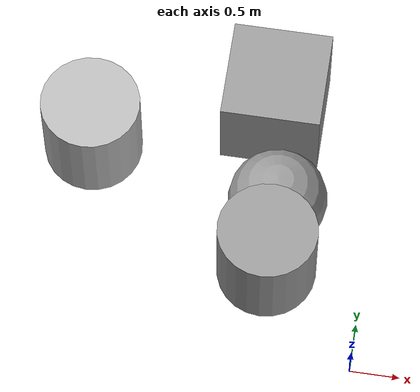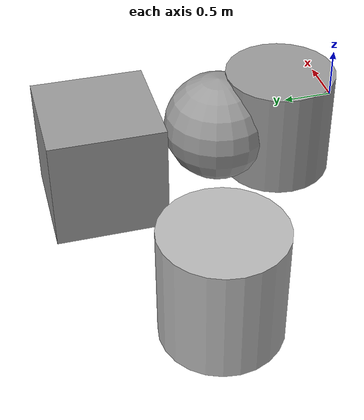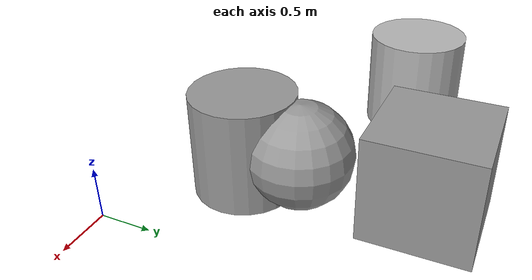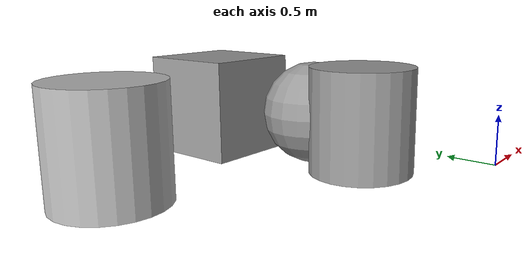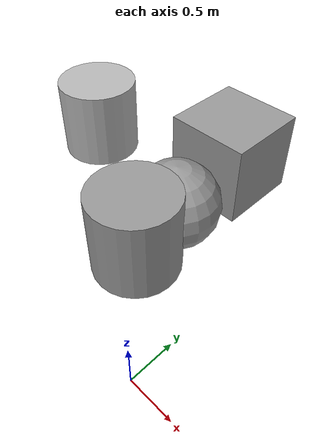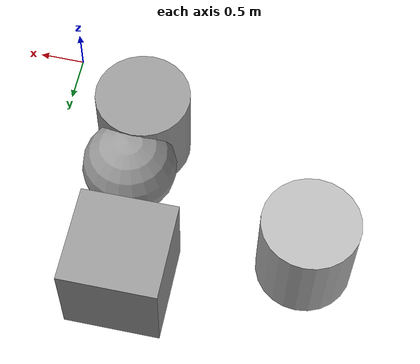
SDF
<?xml version="1.0" ?>
<sdf version="1.6">
  <world name="default">
    <light name="sun" type="directional">
      <cast_shadows>1</cast_shadows>
      <pose>0 0 10 0 0 0</pose>
      <diffuse>0.8 0.8 0.8 1</diffuse>
      <specular>0.2 0.2 0.2 1</specular>
      <attenuation>
        <range>1000</range>
        <constant>0.9</constant>
        <linear>0.01</linear>
        <quadratic>0.001</quadratic>
      </attenuation>
      <direction>-0.5 0.1 -0.9</direction>
      <cast_shadows>1</cast_shadows>
    </light>
    <model name="box_0">
      <pose>-1.121 2.662 0.5 0 0 0</pose>
      <link name="box_0_link">
        <pose>0 0 0 0 0 0</pose>
          <visual name="visual">
            <pose>0 0 0 0 0 0</pose>
            <geometry>
              <box><size>1 1 1</size></box>
            </geometry>
            <material>
              <script>
                <uri>file://media/materials/scripts/gazebo.material</uri>
                <name>Gazebo/Grey</name>
              </script>
              <ambient>0.1 0.1 0.1 1</ambient>
              <diffuse>0.7 0.7 0.7 1</diffuse>
              <specular>0.01 0.01 0.01 1</specular>
              <emissive>0 0 0 1</emissive>
              <opacity>1</opacity>
            </material>
          </visual>
          <collision name="collision">
            <pose>0 0 0 0 0 0</pose>
            <geometry>
              <box><size>1 1 1</size></box>
            </geometry>
          </collision>
      </link>
    </model>
    <model name="sphere_0">
      <pose>-0.944 1.528 0.5 0 0 0</pose>
      <link name="sphere_0_link">
        <pose>0 0 0 0 0 0</pose>
          <visual name="visual">
            <pose>0 0 0 0 0 0</pose>
            <geometry>
              <sphere><radius>0.5</radius></sphere>
            </geometry>
            <material>
              <script>
                <uri>file://media/materials/scripts/gazebo.material</uri>
                <name>Gazebo/Grey</name>
              </script>
              <ambient>0.1 0.1 0.1 1</ambient>
              <diffuse>0.7 0.7 0.7 1</diffuse>
              <specular>0.01 0.01 0.01 1</specular>
              <emissive>0 0 0 1</emissive>
              <opacity>1</opacity>
            </material>
          </visual>
          <collision name="collision">
            <pose>0 0 0 0 0 0</pose>
            <geometry>
              <sphere><radius>0.5</radius></sphere>
            </geometry>
          </collision>
      </link>
    </model>
    <model name="cylinder_0">
      <pose>-0.969 0.954 0.5 0 0 0</pose>
      <link name="cylinder_0_link">
        <pose>0 0 0 0 0 0</pose>
          <visual name="visual">
            <pose>0 0 0 0 0 0</pose>
            <geometry>
              <cylinder><radius>0.5</radius><length>1</length></cylinder>
            </geometry>
            <material>
              <script>
                <uri>file://media/materials/scripts/gazebo.material</uri>
                <name>Gazebo/Grey</name>
              </script>
              <ambient>0.1 0.1 0.1 1</ambient>
              <diffuse>0.7 0.7 0.7 1</diffuse>
              <specular>0.01 0.01 0.01 1</specular>
              <emissive>0 0 0 1</emissive>
              <opacity>1</opacity>
            </material>
          </visual>
          <collision name="collision">
            <pose>0 0 0 0 0 0</pose>
            <geometry>
              <cylinder><radius>0.5</radius><length>1</length></cylinder>
            </geometry>
          </collision>
      </link>
    </model>
    <light name="sun" type="directional">
      <cast_shadows>1</cast_shadows>
      <pose>0 0 10 0 0 0</pose>
      <diffuse>0.8 0.8 0.8 1</diffuse>
      <specular>0.2 0.2 0.2 1</specular>
      <attenuation>
        <range>1000</range>
        <constant>0.9</constant>
        <linear>0.01</linear>
        <quadratic>0.001</quadratic>
      </attenuation>
      <direction>-0.5 0.1 -0.9</direction>
      <cast_shadows>1</cast_shadows>
    </light>
    <model name="cylinder_1">
      <pose>-2.9176752457416963 2.0701300005177528 0.5 0 0 0</pose>
      <link name="cylinder_1_link">
        <pose>0 0 0 0 0 0</pose>
        <visual name="visual">
          <pose>0 0 0 0 0 0</pose>
          <geometry>
          <cylinder><radius>0.5</radius><length>1</length></cylinder>
          </geometry>
        </visual>
        <collision name="collision">
          <pose>0 0 0 0 0 0</pose>
          <geometry>
          <cylinder><radius>0.5</radius><length>1</length></cylinder>
          </geometry>
        </collision>
      </link>
    </model>
  </world>
</sdf>
